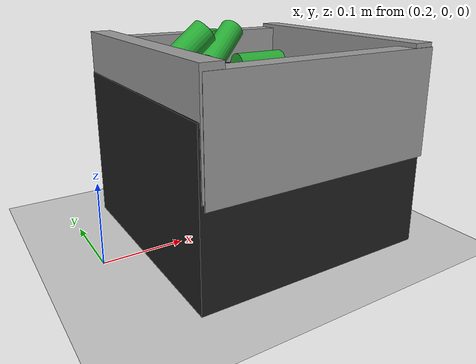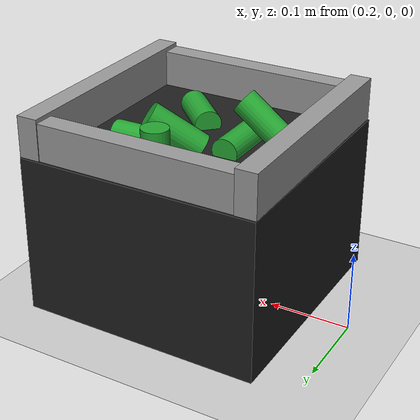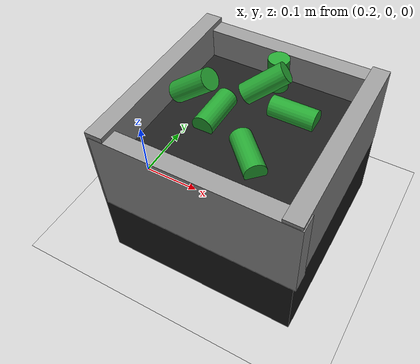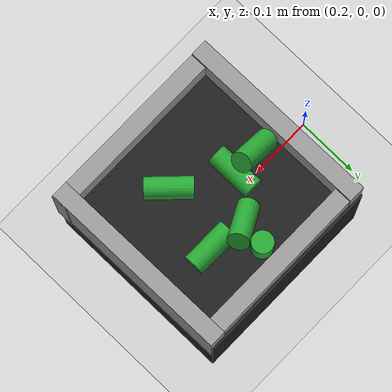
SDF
<?xml version='1.0' ?>
<sdf version='1.4'>
  <world name='empty'>
    <!-- A global light source -->
    <include>
      <uri>model://sun</uri>
    </include>

    <!-- A ground plane -->
    <include>
      <uri>model://ground_plane</uri>
    </include>

    <!-- Physics settings for simulation -->
    <physics type='ode'>
      <max_step_size>0.001</max_step_size>
      <real_time_factor>1</real_time_factor>
      <real_time_update_rate>1000</real_time_update_rate>
      <gravity>0 0 -9.81</gravity>
    </physics>

<model name='coke_can_box_model'>
      <pose frame=''>0.315007 0.002748 0.239661 -0.095928 0.900993 -0.081255</pose>
      <link name='coke_can'>
        <inertial>
          <mass>0.001</mass>
          <inertia>
            <ixx>0.00016</ixx>
            <ixy>0</ixy>
            <ixz>0</ixz>
            <iyy>0.00016</iyy>
            <iyz>0</iyz>
            <izz>0.00006</izz>
          </inertia>
        </inertial>
        <collision name='collision'>

            <geometry>
                <cylinder>
                    <radius>0.01625</radius>
                    <length>0.07</length>
                </cylinder>
            </geometry>
          <max_contacts>10</max_contacts>
          <surface>
                   <friction>
                     <ode>
                       <mu>100.0</mu>
                       <mu2>100.0</mu2>
                     </ode>
                   </friction>
                   <contact>
                     <ode>
                       <kp>10000000.0</kp>
                       <kd>1.0</kd>
                       <min_depth>0.001</min_depth>
                       <max_vel>0.1</max_vel>
                     </ode>
                   </contact>
           </surface>
        </collision>
        <visual name='visual'>
            <geometry>
                <cylinder>
                    <radius>0.01625</radius>
                    <length>0.07</length>
                </cylinder>
            </geometry>
          <material>
            <script>
              <name>Gazebo/Green</name>
              <uri>file://media/materials/scripts/gazebo.material</uri>
            </script>
          </material>
        </visual>
        <self_collide>0</self_collide>
        <kinematic>0</kinematic>
      </link>
    </model>

<model name='coke_can_box_model_2'>
      <pose frame=''>0.40 0.10 0.2165 0 0 0</pose>
      <link name='coke_can'>
        <inertial>
          <mass>0.001</mass>
          <inertia>
            <ixx>0.00016</ixx>
            <ixy>0</ixy>
            <ixz>0</ixz>
            <iyy>0.00016</iyy>
            <iyz>0</iyz>
            <izz>0.00006</izz>
          </inertia>
        </inertial>
        <collision name='collision'>

            <geometry>
                <cylinder>
                    <radius>0.01625</radius>
                    <length>0.07</length>
                </cylinder>
            </geometry>
          <max_contacts>10</max_contacts>
          <surface>
                   <friction>
                     <ode>
                       <mu>100.0</mu>
                       <mu2>100.0</mu2>
                     </ode>
                   </friction>
                   <contact>
                     <ode>
                       <kp>10000000.0</kp>
                       <kd>1.0</kd>
                       <min_depth>0.001</min_depth>
                       <max_vel>0.1</max_vel>
                     </ode>
                   </contact>
           </surface>
        </collision>
        <visual name='visual'>
            <geometry>
                <cylinder>
                    <radius>0.01625</radius>
                    <length>0.07</length>
                </cylinder>
            </geometry>
          <material>
            <script>
              <name>Gazebo/Green</name>
              <uri>file://media/materials/scripts/gazebo.material</uri>
            </script>
          </material>
        </visual>
        <self_collide>0</self_collide>
        <kinematic>0</kinematic>
      </link>
    </model>

<model name='coke_can_box_model_3'>
      <pose frame=''>0.45 0.05 0.207525 -1.697490 1.562231 -1.697400</pose>
      <link name='coke_can'>
        <inertial>
          <mass>0.001</mass>
          <inertia>
            <ixx>0.00016</ixx>
            <ixy>0</ixy>
            <ixz>0</ixz>
            <iyy>0.00016</iyy>
            <iyz>0</iyz>
            <izz>0.00006</izz>
          </inertia>
        </inertial>
        <collision name='collision'>

            <geometry>
                <cylinder>
                    <radius>0.01625</radius>
                    <length>0.07</length>
                </cylinder>
            </geometry>
          <max_contacts>10</max_contacts>
          <surface>
                   <friction>
                     <ode>
                       <mu>100.0</mu>
                       <mu2>100.0</mu2>
                     </ode>
                   </friction>
                   <contact>
                     <ode>
                       <kp>10000000.0</kp>
                       <kd>1.0</kd>
                       <min_depth>0.001</min_depth>
                       <max_vel>0.1</max_vel>
                     </ode>
                   </contact>
           </surface>
        </collision>
        <visual name='visual'>
            <geometry>
                <cylinder>
                    <radius>0.01625</radius>
                    <length>0.07</length>
                </cylinder>
            </geometry>
          <material>
            <script>
              <name>Gazebo/Green</name>
              <uri>file://media/materials/scripts/gazebo.material</uri>
            </script>
          </material>
        </visual>
        <self_collide>0</self_collide>
        <kinematic>0</kinematic>
      </link>
    </model>

<model name='coke_can_box_model_4'>
      <pose frame=''>0.35 0 0.207170 1.57 0 0</pose>
      <link name='coke_can'>
        <inertial>
          <mass>0.001</mass>
          <inertia>
            <ixx>0.00016</ixx>
            <ixy>0</ixy>
            <ixz>0</ixz>
            <iyy>0.00016</iyy>
            <iyz>0</iyz>
            <izz>0.00006</izz>
          </inertia>
        </inertial>
        <collision name='collision'>

            <geometry>
                <cylinder>
                    <radius>0.01625</radius>
                    <length>0.07</length>
                </cylinder>
            </geometry>
          <max_contacts>10</max_contacts>
          <surface>
                   <friction>
                     <ode>
                       <mu>100.0</mu>
                       <mu2>100.0</mu2>
                     </ode>
                   </friction>
                   <contact>
                     <ode>
                       <kp>10000000.0</kp>
                       <kd>1.0</kd>
                       <min_depth>0.001</min_depth>
                       <max_vel>0.1</max_vel>
                     </ode>
                   </contact>
           </surface>
        </collision>
        <visual name='visual'>
            <geometry>
                <cylinder>
                    <radius>0.01625</radius>
                    <length>0.07</length>
                </cylinder>
            </geometry>
          <material>
            <script>
              <name>Gazebo/Green</name>
              <uri>file://media/materials/scripts/gazebo.material</uri>
            </script>
          </material>
        </visual>
        <self_collide>0</self_collide>
        <kinematic>0</kinematic>
      </link>
    </model>

<model name='coke_can_box_model_5'>
      <pose frame=''>0.43 -0.05 0.207170 1.57 0 0.785</pose>
      <link name='coke_can'>
        <inertial>
          <mass>0.001</mass>
          <inertia>
            <ixx>0.00016</ixx>
            <ixy>0</ixy>
            <ixz>0</ixz>
            <iyy>0.00016</iyy>
            <iyz>0</iyz>
            <izz>0.00006</izz>
          </inertia>
        </inertial>
        <collision name='collision'>

            <geometry>
                <cylinder>
                    <radius>0.01625</radius>
                    <length>0.07</length>
                </cylinder>
            </geometry>
          <max_contacts>10</max_contacts>
          <surface>
                   <friction>
                     <ode>
                       <mu>100.0</mu>
                       <mu2>100.0</mu2>
                     </ode>
                   </friction>
                   <contact>
                     <ode>
                       <kp>10000000.0</kp>
                       <kd>1.0</kd>
                       <min_depth>0.001</min_depth>
                       <max_vel>0.1</max_vel>
                     </ode>
                   </contact>
           </surface>
        </collision>
        <visual name='visual'>
            <geometry>
                <cylinder>
                    <radius>0.01625</radius>
                    <length>0.07</length>
                </cylinder>
            </geometry>
          <material>
            <script>
              <name>Gazebo/Green</name>
              <uri>file://media/materials/scripts/gazebo.material</uri>
            </script>
          </material>
        </visual>
        <self_collide>0</self_collide>
        <kinematic>0</kinematic>
      </link>
    </model>

<model name='coke_can_box_model_6'>
      <pose frame=''>0.397801 0.061773 0.233078 -0.835504 -0.580579 -1.525823</pose>
      <link name='coke_can'>
        <inertial>
          <mass>0.001</mass>
          <inertia>
            <ixx>0.00016</ixx>
            <ixy>0</ixy>
            <ixz>0</ixz>
            <iyy>0.00016</iyy>
            <iyz>0</iyz>
            <izz>0.00006</izz>
          </inertia>
        </inertial>
        <collision name='collision'>

            <geometry>
                <cylinder>
                    <radius>0.01625</radius>
                    <length>0.07</length>
                </cylinder>
            </geometry>
          <max_contacts>10</max_contacts>
          <surface>
                   <friction>
                     <ode>
                       <mu>100.0</mu>
                       <mu2>100.0</mu2>
                     </ode>
                   </friction>
                   <contact>
                     <ode>
                       <kp>10000000.0</kp>
                       <kd>1.0</kd>
                       <min_depth>0.001</min_depth>
                       <max_vel>0.1</max_vel>
                     </ode>
                   </contact>
           </surface>
        </collision>
        <visual name='visual'>
            <geometry>
                <cylinder>
                    <radius>0.01625</radius>
                    <length>0.07</length>
                </cylinder>
            </geometry>
          <material>
            <script>
              <name>Gazebo/Green</name>
              <uri>file://media/materials/scripts/gazebo.material</uri>
            </script>
          </material>
        </visual>
        <self_collide>0</self_collide>
        <kinematic>0</kinematic>
      </link>
    </model>

   <model name='table_box_model'>
      <static>true</static>
      <pose frame=''>0.40 0.0 0.1 0 -0 1.5707963265</pose>
      <link name='table_box_link'>
        <inertial>
          <mass>1</mass>
          <inertia>
            <ixx>0.166667</ixx>
            <ixy>0</ixy>
            <ixz>0</ixz>
            <iyy>0.166667</iyy>
            <iyz>0</iyz>
            <izz>0.166667</izz>
          </inertia>
        </inertial>
        <collision name='collision'>
          <geometry>
            <box>
              <size>0.30 0.30 0.2</size>
            </box>
          </geometry>
          <max_contacts>10</max_contacts>
          <surface>
            <contact>
              <ode/>
            </contact>
            <bounce/>
            <friction>
              <ode>
                <mu>0.6</mu>
                <mu2>0.6</mu2>
              </ode>
              <torsional>
                <ode/>
              </torsional>
            </friction>
          </surface>
        </collision>
        <visual name='visual'>
          <geometry>
            <box>
              <size>0.30 0.30 0.2</size>
            </box>
          </geometry>
          <material>
            <script>
              <name>Gazebo/Black</name>
              <uri>file://media/materials/scripts/gazebo.material</uri>
            </script>
          </material>
        </visual>
        <self_collide>0</self_collide>
        <kinematic>0</kinematic>
      </link>
    </model>

    <model name='bbox'>
      <link name='link'>
        <inertial>
          <mass>0.00104021</mass>
          <inertia>
            <ixx>1.57995e-06</ixx>
            <ixy>0</ixy>
            <ixz>0</ixz>
            <iyy>9.26966e-06</iyy>
            <iyz>0</iyz>
            <izz>7.80938e-06</izz>
          </inertia>
          <pose frame=''>0 0 0 0 -0 0</pose>
        </inertial>
        <self_collide>0</self_collide>
        <enable_wind>0</enable_wind>
        <kinematic>0</kinematic>
        <pose frame=''>0.404637 -0.138773 0.17942 -0 -0 -0</pose>
        <visual name='visual'>
          <geometry>
            <box>
              <size>0.298998 0.026273 0.132424</size>
            </box>
          </geometry>
          <material>
            <script>
              <name>Gazebo/Grey</name>
              <uri>file://media/materials/scripts/gazebo.material</uri>
            </script>
            <emissive>0 0 0 1</emissive>
          </material>
          <pose frame=''>0 0 0 0 -0 0</pose>
          <transparency>0</transparency>
          <cast_shadows>1</cast_shadows>
        </visual>
        <collision name='collision'>
          <laser_retro>0</laser_retro>
          <max_contacts>10</max_contacts>
          <pose frame=''>0 0 0 0 -0 0</pose>
          <geometry>
            <box>
              <size>0.298998 0.026273 0.132424</size>
            </box>
          </geometry>
          <surface>
            <friction>
              <ode>
                <mu>1</mu>
                <mu2>1</mu2>
                <fdir1>0 0 0</fdir1>
                <slip1>0</slip1>
                <slip2>0</slip2>
              </ode>
              <torsional>
                <coefficient>1</coefficient>
                <patch_radius>0</patch_radius>
                <surface_radius>0</surface_radius>
                <use_patch_radius>1</use_patch_radius>
                <ode>
                  <slip>0</slip>
                </ode>
              </torsional>
            </friction>
            <bounce>
              <restitution_coefficient>0</restitution_coefficient>
              <threshold>1e+06</threshold>
            </bounce>
            <contact>
              <collide_without_contact>0</collide_without_contact>
              <collide_without_contact_bitmask>1</collide_without_contact_bitmask>
              <collide_bitmask>1</collide_bitmask>
              <ode>
                <soft_cfm>0</soft_cfm>
                <soft_erp>0.2</soft_erp>
                <kp>1e+13</kp>
                <kd>1</kd>
                <max_vel>0.01</max_vel>
                <min_depth>0</min_depth>
              </ode>
              <bullet>
                <split_impulse>1</split_impulse>
                <split_impulse_penetration_threshold>-0.01</split_impulse_penetration_threshold>
                <soft_cfm>0</soft_cfm>
                <soft_erp>0.2</soft_erp>
                <kp>1e+13</kp>
                <kd>1</kd>
              </bullet>
            </contact>
          </surface>
        </collision>
      </link>
      <link name='link_clone'>
        <inertial>
          <mass>0.00104021</mass>
          <inertia>
            <ixx>1.57995e-06</ixx>
            <ixy>0</ixy>
            <ixz>0</ixz>
            <iyy>9.26966e-06</iyy>
            <iyz>0</iyz>
            <izz>7.80938e-06</izz>
          </inertia>
          <pose frame=''>0 0 0 0 -0 0</pose>
        </inertial>
        <self_collide>0</self_collide>
        <enable_wind>0</enable_wind>
        <kinematic>0</kinematic>
        <pose frame=''>0.400076 0.13368 0.17981 -1e-05 -0 -0.000119</pose>
        <visual name='visual'>
          <geometry>
            <box>
              <size>0.298998 0.026273 0.132424</size>
            </box>
          </geometry>
          <material>
            <script>
              <name>Gazebo/Grey</name>
              <uri>file://media/materials/scripts/gazebo.material</uri>
            </script>
            <shader type='pixel'/>
            <emissive>0 0 0 1</emissive>
          </material>
          <pose frame=''>0 0 0 0 -0 0</pose>
          <transparency>0</transparency>
          <cast_shadows>1</cast_shadows>
        </visual>
        <collision name='collision'>
          <laser_retro>0</laser_retro>
          <max_contacts>10</max_contacts>
          <pose frame=''>0 0 0 0 -0 0</pose>
          <geometry>
            <box>
              <size>0.298998 0.026273 0.132424</size>
            </box>
          </geometry>
          <surface>
            <friction>
              <ode>
                <mu>1</mu>
                <mu2>1</mu2>
                <fdir1>0 0 0</fdir1>
                <slip1>0</slip1>
                <slip2>0</slip2>
              </ode>
              <torsional>
                <coefficient>1</coefficient>
                <patch_radius>0</patch_radius>
                <surface_radius>0</surface_radius>
                <use_patch_radius>1</use_patch_radius>
                <ode>
                  <slip>0</slip>
                </ode>
              </torsional>
            </friction>
            <bounce>
              <restitution_coefficient>0</restitution_coefficient>
              <threshold>1e+06</threshold>
            </bounce>
            <contact>
              <collide_without_contact>0</collide_without_contact>
              <collide_without_contact_bitmask>1</collide_without_contact_bitmask>
              <collide_bitmask>1</collide_bitmask>
              <ode>
                <soft_cfm>0</soft_cfm>
                <soft_erp>0.2</soft_erp>
                <kp>1e+13</kp>
                <kd>1</kd>
                <max_vel>0.01</max_vel>
                <min_depth>0</min_depth>
              </ode>
              <bullet>
                <split_impulse>1</split_impulse>
                <split_impulse_penetration_threshold>-0.01</split_impulse_penetration_threshold>
                <soft_cfm>0</soft_cfm>
                <soft_erp>0.2</soft_erp>
                <kp>1e+13</kp>
                <kd>1</kd>
              </bullet>
            </contact>
          </surface>
        </collision>
      </link>
      <link name='link_clone_0'>
        <inertial>
          <mass>0.00104021</mass>
          <inertia>
            <ixx>1.57995e-06</ixx>
            <ixy>0</ixy>
            <ixz>0</ixz>
            <iyy>9.26966e-06</iyy>
            <iyz>0</iyz>
            <izz>7.80938e-06</izz>
          </inertia>
          <pose frame=''>0 0 0 0 -0 0</pose>
        </inertial>
        <self_collide>0</self_collide>
        <enable_wind>0</enable_wind>
        <kinematic>0</kinematic>
        <pose frame=''>0.538712 -0.001579 0.1848 0 -1e-05 -1.56405</pose>
        <visual name='visual'>
          <geometry>
            <box>
              <size>0.298998 0.026273 0.132424</size>
            </box>
          </geometry>
          <material>
            <script>
              <name>Gazebo/Grey</name>
              <uri>file://media/materials/scripts/gazebo.material</uri>
            </script>
            <shader type='pixel'/>
            <emissive>0 0 0 1</emissive>
          </material>
          <pose frame=''>0 0 0 0 -0 0</pose>
          <transparency>0</transparency>
          <cast_shadows>1</cast_shadows>
        </visual>
        <collision name='collision'>
          <laser_retro>0</laser_retro>
          <max_contacts>10</max_contacts>
          <pose frame=''>0 0 0 0 -0 0</pose>
          <geometry>
            <box>
              <size>0.298998 0.026273 0.132424</size>
            </box>
          </geometry>
          <surface>
            <friction>
              <ode>
                <mu>1</mu>
                <mu2>1</mu2>
                <fdir1>0 0 0</fdir1>
                <slip1>0</slip1>
                <slip2>0</slip2>
              </ode>
              <torsional>
                <coefficient>1</coefficient>
                <patch_radius>0</patch_radius>
                <surface_radius>0</surface_radius>
                <use_patch_radius>1</use_patch_radius>
                <ode>
                  <slip>0</slip>
                </ode>
              </torsional>
            </friction>
            <bounce>
              <restitution_coefficient>0</restitution_coefficient>
              <threshold>1e+06</threshold>
            </bounce>
            <contact>
              <collide_without_contact>0</collide_without_contact>
              <collide_without_contact_bitmask>1</collide_without_contact_bitmask>
              <collide_bitmask>1</collide_bitmask>
              <ode>
                <soft_cfm>0</soft_cfm>
                <soft_erp>0.2</soft_erp>
                <kp>1e+13</kp>
                <kd>1</kd>
                <max_vel>0.01</max_vel>
                <min_depth>0</min_depth>
              </ode>
              <bullet>
                <split_impulse>1</split_impulse>
                <split_impulse_penetration_threshold>-0.01</split_impulse_penetration_threshold>
                <soft_cfm>0</soft_cfm>
                <soft_erp>0.2</soft_erp>
                <kp>1e+13</kp>
                <kd>1</kd>
              </bullet>
            </contact>
          </surface>
        </collision>
      </link>
      <link name='link_clone_0_clone'>
        <inertial>
          <mass>0.00104021</mass>
          <inertia>
            <ixx>1.57995e-06</ixx>
            <ixy>0</ixy>
            <ixz>0</ixz>
            <iyy>9.26966e-06</iyy>
            <iyz>0</iyz>
            <izz>7.80938e-06</izz>
          </inertia>
          <pose frame=''>0 0 0 0 -0 0</pose>
        </inertial>
        <self_collide>0</self_collide>
        <enable_wind>0</enable_wind>
        <kinematic>0</kinematic>
        <pose frame=''>0.264375 -0.001947 0.18719 -0 -2e-05 -1.56415</pose>
        <visual name='visual'>
          <geometry>
            <box>
              <size>0.298998 0.026273 0.132424</size>
            </box>
          </geometry>
          <material>
            <script>
              <name>Gazebo/Grey</name>
              <uri>file://media/materials/scripts/gazebo.material</uri>
            </script>
            <shader type='pixel'/>
            <emissive>0 0 0 1</emissive>
          </material>
          <pose frame=''>0 0 0 0 -0 0</pose>
          <transparency>0</transparency>
          <cast_shadows>1</cast_shadows>
        </visual>
        <collision name='collision'>
          <laser_retro>0</laser_retro>
          <max_contacts>10</max_contacts>
          <pose frame=''>0 0 0 0 -0 0</pose>
          <geometry>
            <box>
              <size>0.298998 0.026273 0.132424</size>
            </box>
          </geometry>
          <surface>
            <friction>
              <ode>
                <mu>1</mu>
                <mu2>1</mu2>
                <fdir1>0 0 0</fdir1>
                <slip1>0</slip1>
                <slip2>0</slip2>
              </ode>
              <torsional>
                <coefficient>1</coefficient>
                <patch_radius>0</patch_radius>
                <surface_radius>0</surface_radius>
                <use_patch_radius>1</use_patch_radius>
                <ode>
                  <slip>0</slip>
                </ode>
              </torsional>
            </friction>
            <bounce>
              <restitution_coefficient>0</restitution_coefficient>
              <threshold>1e+06</threshold>
            </bounce>
            <contact>
              <collide_without_contact>0</collide_without_contact>
              <collide_without_contact_bitmask>1</collide_without_contact_bitmask>
              <collide_bitmask>1</collide_bitmask>
              <ode>
                <soft_cfm>0</soft_cfm>
                <soft_erp>0.2</soft_erp>
                <kp>1e+13</kp>
                <kd>1</kd>
                <max_vel>0.01</max_vel>
                <min_depth>0</min_depth>
              </ode>
              <bullet>
                <split_impulse>1</split_impulse>
                <split_impulse_penetration_threshold>-0.01</split_impulse_penetration_threshold>
                <soft_cfm>0</soft_cfm>
                <soft_erp>0.2</soft_erp>
                <kp>1e+13</kp>
                <kd>1</kd>
              </bullet>
            </contact>
          </surface>
        </collision>
      </link>
      <joint name='link_JOINT_7' type='fixed'>
        <parent>link</parent>
        <child>link_clone_0</child>
        <pose frame=''>0 0 0 0 -0 0</pose>
        <physics>
          <ode>
            <limit>
              <cfm>0</cfm>
              <erp>0.2</erp>
            </limit>
            <suspension>
              <cfm>0</cfm>
              <erp>0.2</erp>
            </suspension>
          </ode>
        </physics>
      </joint>
      <joint name='link_clone_0_JOINT_8' type='fixed'>
        <parent>link_clone_0</parent>
        <child>link_clone</child>
        <pose frame=''>0 0 0 0 -0 0</pose>
        <physics>
          <ode>
            <limit>
              <cfm>0</cfm>
              <erp>0.2</erp>
            </limit>
            <suspension>
              <cfm>0</cfm>
              <erp>0.2</erp>
            </suspension>
          </ode>
        </physics>
      </joint>
      <joint name='link_clone_0_clone_JOINT_6' type='fixed'>
        <parent>link_clone_0_clone</parent>
        <child>link</child>
        <pose frame=''>0 0 0 0 -0 0</pose>
        <physics>
          <ode>
            <limit>
              <cfm>0</cfm>
              <erp>0.2</erp>
            </limit>
            <suspension>
              <cfm>0</cfm>
              <erp>0.2</erp>
            </suspension>
          </ode>
        </physics>
      </joint>
      <joint name='link_clone_JOINT_9' type='fixed'>
        <parent>link_clone</parent>
        <child>link_clone_0_clone</child>
        <pose frame=''>0 0 0 0 -0 0</pose>
        <physics>
          <ode>
            <limit>
              <cfm>0</cfm>
              <erp>0.2</erp>
            </limit>
            <suspension>
              <cfm>0</cfm>
              <erp>0.2</erp>
            </suspension>
          </ode>
        </physics>
      </joint>
      <static>1</static>
      <allow_auto_disable>1</allow_auto_disable>
    </model>

  </world>
</sdf>
